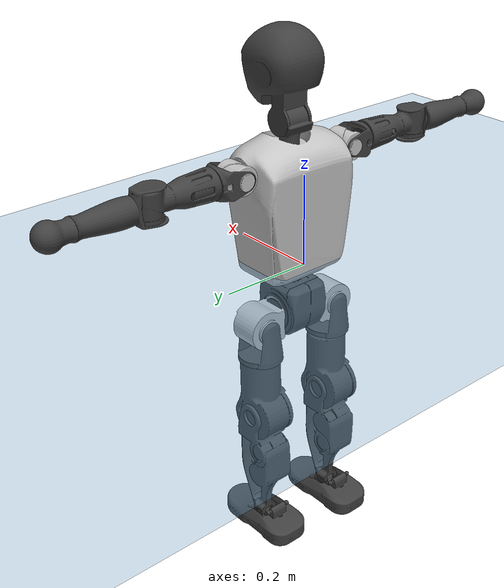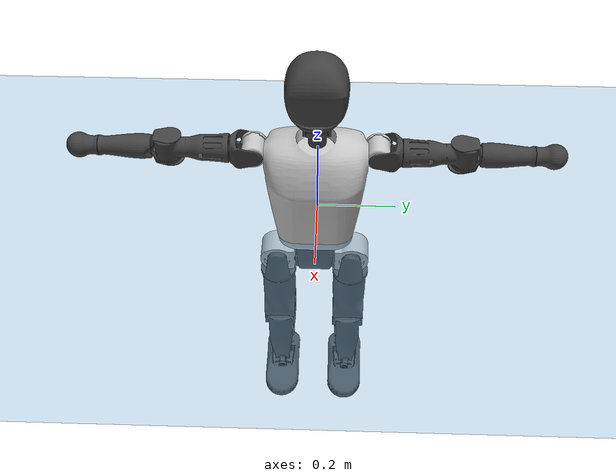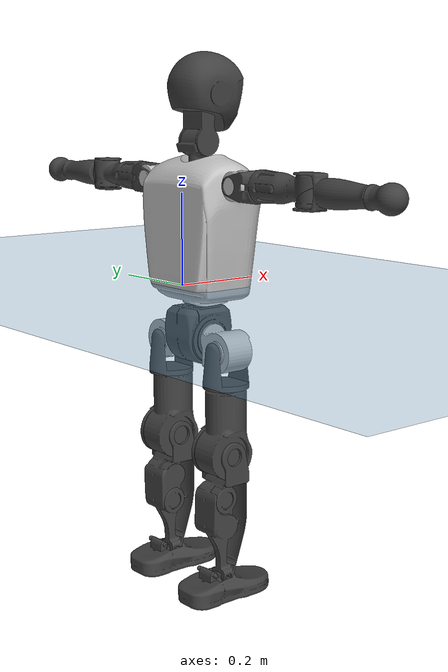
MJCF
<mujoco model="T1">
  <compiler angle="radian" assetdir="assets" balanceinertia="true" inertiafromgeom="false"/>

  <option timestep="0.005" density="1.2" viscosity="2e-05"/>

  <size nkey="1"/>

  <visual>
    <quality shadowsize="8192"/>
    <map shadowclip="0.5"/>
  </visual>

  <default>
    <default class="/">
      <joint armature="0.01" damping="0.01" frictionloss="0.1"/>
      <geom contype="0" conaffinity="0" group="1" solref="-1000 -80"/>
      <site size="0.01 0.005 0.005" group="5"/>
      <general forcelimited="true" biastype="affine" gainprm="25" biasprm="0 -25 -0.6"/>
      <default class="t1">
        <geom rgba="0.25 0.25 0.25 1"/>
        <default class="visual">
          <geom type="mesh" group="2"/>
        </default>
        <default class="collision">
          <geom group="3"/>
        </default>
        <default class="foot">
          <geom size="0.1115 0.05 0.015" type="box" condim="6" group="4" priority="1" solimp="0.015 1 0.015"/>
        </default>
        <default class="reward_collision_sphere">
          <geom group="5" rgba="1 0 0 1"/>
        </default>
      </default>
    </default>
  </default>

  <asset>
    <texture type="skybox" colorspace="auto" name="//unnamed_texture_0" builtin="gradient" rgb1="0.95 0.95 0.95" rgb2="0.95 0.95 0.95" width="100" height="600"/>
    <texture type="2d" colorspace="auto" name="texplane" builtin="checker" rgb1="0.345 0.575 0.748" rgb2="0.345 0.575 0.748" markrgb="1 1 1" width="512" height="512"/>
    <material name="MatPlane" class="/" texture="texplane" texuniform="true" texrepeat="2 2" specular="0.9"/>
    <mesh name="Trunk" class="/" file="Trunk.stl"/>
    <mesh name="H1" class="/" file="H1.stl"/>
    <mesh name="H2" class="/" file="H2.stl"/>
    <mesh name="AL1" class="/" file="AL1.stl"/>
    <mesh name="AL2" class="/" file="AL2.stl"/>
    <mesh name="AL3" class="/" file="AL3.stl"/>
    <mesh name="left_hand_link" class="/" file="left_hand_link.stl"/>
    <mesh name="AR1" class="/" file="AR1.stl"/>
    <mesh name="AR2" class="/" file="AR2.stl"/>
    <mesh name="AR3" class="/" file="AR3.stl"/>
    <mesh name="right_hand_link" class="/" file="right_hand_link.stl"/>
    <mesh name="Waist" class="/" file="Waist.stl"/>
    <mesh name="Hip_Pitch_Left" class="/" file="Hip_Pitch_Left.stl"/>
    <mesh name="Hip_Roll_Left" class="/" file="Hip_Roll_Left.stl"/>
    <mesh name="Hip_Yaw_Left" class="/" file="Hip_Yaw_Left.stl"/>
    <mesh name="Shank_Left" class="/" file="Shank_Left.stl"/>
    <mesh name="Ankle_Cross_Left" class="/" file="Ankle_Cross_Left.stl"/>
    <mesh name="left_foot_link" class="/" file="left_foot_link.stl"/>
    <mesh name="Hip_Pitch_Right" class="/" file="Hip_Pitch_Right.stl"/>
    <mesh name="Hip_Roll_Right" class="/" file="Hip_Roll_Right.stl"/>
    <mesh name="Hip_Yaw_Right" class="/" file="Hip_Yaw_Right.stl"/>
    <mesh name="Shank_Right" class="/" file="Shank_Right.stl"/>
    <mesh name="Ankle_Cross_Right" class="/" file="Ankle_Cross_Right.stl"/>
    <mesh name="right_foot_link" class="/" file="right_foot_link.stl"/>
  </asset>

  <worldbody>
    <geom name="floor" class="/" size="100 100 0.125" type="plane" group="0" material="MatPlane"/>
    <light name="toplight_shadow" class="/" pos="0 0 5" dir="0.0990148 0.0990148 -0.990148" type="directional" ambient="0.04 0.04 0.04" diffuse="0.55 0.55 0.55" specular="0.12 0.12 0.12"/>
    <light name="toplight_fill" class="/" pos="0 0 5" dir="0.0990148 0.0990148 -0.990148" type="directional" castshadow="false" ambient="0.04 0.04 0.04" diffuse="0.3 0.3 0.3" specular="0.08 0.08 0.08"/>
    <body name="trunk" childclass="t1" pos="4.28431e-05 -0.00261345 0.00219605" quat="0.999999 -0.00101601 0.000834239 0.000221441">
      <inertial pos="0.0369899 -0.00162405 0.105625" quat="0.999948 -4.23402e-05 -0.0102124 0.000432918" mass="7.87185" diaginertia="0.0145587 0.0554498 0.0607465"/>
      <joint name="//unnamed_joint_0" type="free" armature="0" damping="0" frictionloss="0"/>
      <geom name="//unnamed_geom_1" class="visual" rgba="0.76 0.76 0.76 1" mesh="Trunk"/>
      <geom name="//unnamed_geom_2" class="collision" size="0.0657192 0.0876257 0.131438" pos="0.0412853 0 0.12054" type="box"/>
      <geom name="//unnamed_geom_3" class="reward_collision_sphere" size="0.10077" pos="0.0412853 0 0.10045"/>
      <geom name="//unnamed_geom_4" class="reward_collision_sphere" size="0.0131438" pos="0.0412853 0.0795753 0"/>
      <geom name="//unnamed_geom_5" class="reward_collision_sphere" size="0.0131438" pos="0.0412853 -0.0795753 0"/>
      <geom name="//unnamed_geom_6" class="reward_collision_sphere" size="0.0131438" pos="0.0412853 0.100171 0.18081"/>
      <geom name="//unnamed_geom_7" class="reward_collision_sphere" size="0.0131438" pos="0.0412853 -0.100171 0.18081"/>
      <site name="imu" pos="0.0109843 0.00421835 -0.00462376" size="0.00876257"/>
      <camera name="track" pos="0 -1.87236 0" quat="0.707107 0.707107 0 0" mode="trackcom"/>
      <camera name="ego_camera" pos="0.0839468 0 0.42189" quat="-0.5 -0.5 0.5 0.5"/>
      <body name="H1" pos="0.0449073 0.00239004 0.241724" quat="1 2.36581e-05 6.71966e-06 -4.57265e-05">
        <inertial pos="-0.00359722 -0.00148713 0.0598925" quat="0.771128 -0.0107105 -0.00355654 0.63658" mass="0.298381" diaginertia="3.64198e-05 0.000162173 0.000151358"/>
        <joint name="AAHead_yaw" pos="0 0 0" axis="0.00416352 0.00285411 0.999987" range="-1.57552 1.5228" armature="0.00765604" damping="0.0169124" frictionloss="0.0987348"/>
        <geom name="//unnamed_geom_8" class="visual" mesh="H1"/>
        <body name="H2" pos="-0.000157443 -0.00018477 0.0636736" quat="1 7.68153e-06 -8.53929e-05 -0.000135836">
          <inertial pos="0.00398475 8.89046e-05 0.0990663" quat="0.988394 0.106491 -0.0750428 -0.0781439" mass="0.41277" diaginertia="0.000301155 0.0013398 0.00176349"/>
          <joint name="Head_pitch" pos="0 0 0" axis="0.00182909 -0.999992 -0.00359321" range="-1.22167 0.344926" armature="0.00750425" damping="0.00480616" frictionloss="0.0916058"/>
          <geom name="//unnamed_geom_9" class="visual" mesh="H2"/>
          <geom name="//unnamed_geom_10" class="collision" size="0.0701005" pos="0.00688089 0 0.110495"/>
          <geom name="//unnamed_geom_11" class="reward_collision_sphere" size="0.0788631" pos="0.0137618 0 0.10045"/>
        </body>
      </body>
      <body name="AL1" pos="0.0400322 0.0991781 0.220698" quat="1 0.000150184 0.000578838 4.84017e-05">
        <inertial pos="-0.00183987 0.0421468 -0.00075144" quat="0.513334 0.488843 -0.507383 0.489982" mass="0.35875" diaginertia="0.000210568 0.000932988 0.000306841"/>
        <joint name="Left_Shoulder_Pitch" pos="0 0 0" axis="0.000875151 0.999968 0.00798118" range="-3.31458 1.22385" armature="0.00848396" damping="0.00773943" frictionloss="0.0917806"/>
        <geom name="//unnamed_geom_12" class="visual" rgba="0.76 0.76 0.76 1" mesh="AL1"/>
        <body name="AL2" pos="0.000963074 0.045102 -0.000546986" quat="1 -1.50416e-05 4.84998e-05 4.18848e-05">
          <inertial pos="0.00310133 0.0340608 -0.000503015" quat="0.48901 0.511648 -0.48828 0.510557" mass="0.109451" diaginertia="6.2461e-05 0.000247486 0.000184404"/>
          <joint name="Left_Shoulder_Roll" pos="0 0 0" axis="-0.999993 0.00361941 0.000145161" stiffness="6.55048e-05" range="-1.57972 1.76912" armature="0.00889235" damping="0.00429033" frictionloss="0.0899557"/>
          <geom name="//unnamed_geom_13" class="visual" mesh="AL2"/>
          <body name="AL3" pos="0.00328331 0.0575729 0.00155282" quat="0.999999 9.42986e-05 0.00046888 -0.00113962">
            <inertial pos="-0.0029638 0.0800561 9.17419e-05" quat="0.709788 0.704414 -0.00101332 0.00044157" mass="0.702215" diaginertia="0.00199919 0.0088675 0.00063372"/>
            <joint name="Left_Elbow_Pitch" pos="0 0 0" axis="0.000224258 -1 -0.000351068" stiffness="0.00406403" range="-2.27583 2.26468" armature="0.00813485" damping="0.0083523" frictionloss="0.0921882"/>
            <geom name="//unnamed_geom_14" class="visual" mesh="AL3"/>
            <geom name="//unnamed_geom_15" class="collision" size="0.0262877 0.0657192" pos="0 0.046809 0" quat="0.707105 0.707108 0 0" type="cylinder"/>
            <geom name="//unnamed_geom_16" class="reward_collision_sphere" size="0.0315452"/>
            <body name="left_hand_link" pos="-0.000331656 0.137707 -0.00173895" quat="0.999999 0.0010999 6.9992e-05 -0.000723302">
              <inertial pos="-0.000690696 0.100948 0.00233563" quat="0.704641 0.709557 0.00190898 -0.00229028" mass="0.215148" diaginertia="0.0012534 0.00563531 0.00020535"/>
              <joint name="Left_Elbow_Yaw" pos="0 0 0" axis="0.000165105 -0.000190486 1" stiffness="0.00917887" range="-2.42547 0.0046427" armature="0.00893615" damping="0.0107653" frictionloss="0.0867052"/>
              <geom name="//unnamed_geom_17" class="visual" mesh="left_hand_link"/>
              <geom name="//unnamed_geom_18" class="collision" size="0.0262877 0.0766725" pos="0 0.121703 0" quat="0.707105 0.707108 0 0" type="cylinder"/>
              <geom name="//unnamed_geom_19" class="reward_collision_sphere" size="0.0438128"/>
              <geom name="//unnamed_geom_20" class="reward_collision_sphere" size="0.030669" pos="0 0.10298 0"/>
              <geom name="//unnamed_geom_21" class="reward_collision_sphere" size="0.030669" pos="0 0.201279 0"/>
            </body>
          </body>
        </body>
      </body>
      <body name="AR1" pos="0.0401723 -0.101197 0.21951" quat="1 0.000565354 0.000570926 -0.000142974">
        <inertial pos="-0.000168503 -0.04488 0.00257103" quat="0.501838 0.496565 -0.502627 0.498947" mass="0.351791" diaginertia="0.000207081 0.00088564 0.00029564"/>
        <joint name="Right_Shoulder_Pitch" pos="0 0 0" axis="0.000229011 -0.999927 0.0121203" stiffness="0.00632484" range="-1.17859 3.30515" armature="0.00859432" damping="0.00704415" frictionloss="0.0978894"/>
        <geom name="//unnamed_geom_22" class="visual" rgba="0.76 0.76 0.76 1" mesh="AR1"/>
        <body name="AR2" pos="-0.000582464 -0.0440607 7.14205e-06" quat="1 0.000462334 -8.0161e-05 -0.00017362">
          <inertial pos="0.00115691 -0.0351145 -0.000797798" quat="0.51446 0.488633 -0.508225 0.488136" mass="0.109569" diaginertia="6.36604e-05 0.000254843 0.000180415"/>
          <joint name="Right_Shoulder_Roll" pos="0 0 0" axis="-0.99991 0.00401079 0.0127903" range="-1.73272 1.56214" armature="0.00762575" damping="0.00750143" frictionloss="0.0912005"/>
          <geom name="//unnamed_geom_23" class="visual" mesh="AR2"/>
          <body name="AR3" pos="7.95115e-05 -0.0593679 0.0022418" quat="0.999999 -0.000296071 -8.19935e-05 -0.00115541">
            <inertial pos="0.00226823 -0.0798366 0.00270398" quat="0.707891 0.706322 0.000375396 9.90038e-05" mass="0.668578" diaginertia="0.00187064 0.00899965 0.00062123"/>
            <joint name="Right_Elbow_Pitch" pos="0 0 0" axis="-0.000651218 1 -0.000126089" range="-2.25027 2.26063" armature="0.00861818" damping="0.00612845" frictionloss="0.0987541"/>
            <geom name="//unnamed_geom_24" class="visual" mesh="AR3"/>
            <geom name="//unnamed_geom_25" class="collision" size="0.0262877 0.0657192" pos="0 -0.046809 0" quat="0.707105 0.707108 0 0" type="cylinder"/>
            <geom name="//unnamed_geom_26" class="reward_collision_sphere" size="0.0315452"/>
            <body name="right_hand_link" pos="-0.00226917 -0.138873 -0.00203416" quat="1 -5.12592e-05 -0.000100611 0.000144605">
              <inertial pos="-0.000469716 -0.103145 0.00176635" quat="0.706169 0.708039 -0.00157113 0.00210343" mass="0.22071" diaginertia="0.00130163 0.00605524 0.000225967"/>
              <joint name="Right_Elbow_Yaw" pos="0 0 0" axis="-0.0110207 -0.00163884 0.999938" range="0.0145295 2.43654" armature="0.00859223" damping="0.00522293" frictionloss="0.0928204"/>
              <geom name="//unnamed_geom_27" class="visual" mesh="right_hand_link"/>
              <geom name="//unnamed_geom_28" class="collision" size="0.0262877 0.0766725" pos="0 -0.121703 0" quat="0.707105 0.707108 0 0" type="cylinder"/>
              <geom name="//unnamed_geom_29" class="reward_collision_sphere" size="0.0438128"/>
              <geom name="//unnamed_geom_30" class="reward_collision_sphere" size="0.030669" pos="0 -0.10298 0"/>
              <geom name="//unnamed_geom_31" class="reward_collision_sphere" size="0.030669" pos="0 -0.201279 0"/>
            </body>
          </body>
        </body>
      </body>
      <body name="Waist" pos="0.0413156 -0.00142287 -0.11638" quat="0.999999 -0.00109791 -0.00133452 -4.35286e-05">
        <inertial pos="-0.00144515 0.00153723 0.00557901" quat="0.984615 0.00672931 -0.17444 -0.00768311" mass="1.69475" diaginertia="0.000837888 0.00388228 0.00496023"/>
        <joint name="Waist" pos="0 0 0" axis="0.00672781 -0.00373406 0.99997" range="-1.57092 1.54819" armature="0.00863799" damping="0.0166923" frictionloss="0.0874806"/>
        <geom name="//unnamed_geom_32" class="visual" mesh="Waist"/>
        <body name="Hip_Pitch_Left" pos="0.001265 0.0964679 0.00158391" quat="1 -8.10962e-05 -0.000172777 9.78889e-05">
          <inertial pos="0.00334853 -0.0068267 -0.018459" quat="0.974644 0.222009 0.0278978 0.00154991" mass="0.697025" diaginertia="0.00027364 0.00109828 0.00131617"/>
          <joint name="Left_Hip_Pitch" pos="0 0 0" axis="-0.00199705 0.999972 0.00726574" stiffness="0.012799" range="-1.79812 1.59448" armature="0.00928142" damping="0.0115436" frictionloss="0.0893725"/>
          <geom name="//unnamed_geom_33" class="visual" rgba="0.76 0.76 0.76 1" mesh="Hip_Pitch_Left"/>
          <body name="Hip_Roll_Left" pos="-0.00166606 -0.00110374 -0.0226626" quat="1 -0.000105683 -2.44658e-05 0.000318202">
            <inertial pos="0.00081445 -0.00259328 -0.054503" quat="0.706584 -0.00567795 -0.00624091 0.707579" mass="0.253171" diaginertia="0.000253191 0.00102746 0.000529487"/>
            <joint name="Left_Hip_Roll" pos="0 0 0" axis="-0.999999 2.50101e-05 -0.00170358" stiffness="0.00058184" range="-1.54671 0.220998" armature="0.00827583" damping="0.000617596" frictionloss="0.0977245"/>
            <geom name="//unnamed_geom_34" class="visual" mesh="Hip_Roll_Left"/>
            <geom name="//unnamed_geom_35" class="reward_collision_sphere" size="0.0481941"/>
            <body name="Hip_Yaw_Left" pos="0.00113832 -0.00170726 -0.0811527" quat="1 0.000487538 0.000323775 -0.000426487">
              <inertial pos="-0.00548985 -0.00123783 -0.0919139" quat="0.697442 -0.0326793 -0.033674 0.715104" mass="1.43609" diaginertia="0.00385636 0.017552 0.00255457"/>
              <joint name="Left_Hip_Yaw" pos="0 0 0" axis="-0.00390486 -0.000209711 -0.999992" range="-1.05699 1.02218" armature="0.00888977" damping="0.0062694" frictionloss="0.0866213"/>
              <geom name="//unnamed_geom_36" class="visual" mesh="Hip_Yaw_Left"/>
              <geom name="//unnamed_geom_37" class="collision" size="0.0438128 0.0701005" type="cylinder"/>
              <body name="Shank_Left" pos="-0.0092522 7.45705e-05 -0.136008" quat="1 8.49389e-06 8.06012e-05 0.000278676">
                <inertial pos="-0.00639505 0.000906561 -0.124939" quat="0.997666 -0.0036851 -0.0199404 0.0652035" mass="1.14227" diaginertia="0.00540336 0.0236903 0.00181887"/>
                <joint name="Left_Knee_Pitch" pos="0 0 0" axis="-0.00126999 0.999998 0.00145721" range="0.00062722 2.30691" armature="0.00972814" damping="0" frictionloss="0.0861893"/>
                <geom name="//unnamed_geom_38" class="visual" mesh="Shank_Left"/>
                <geom name="//unnamed_geom_39" class="collision" size="0.0438128 0.0657192" pos="0 0 -0.12054" type="cylinder"/>
                <geom name="//unnamed_geom_40" class="reward_collision_sphere" size="0.0569567"/>
                <body name="Ankle_Cross_Left" pos="0.00277772 -0.00012039 -0.280583" quat="1 -5.60647e-05 0.000364357 -0.000291089">
                  <inertial pos="-0.00504261 -0.00126451 -0.00699331" quat="0.441805 0.549789 0.551941 0.444861" mass="0.0486409" diaginertia="4.39569e-06 1.84582e-05 1.15848e-05"/>
                  <joint name="Left_Ankle_Pitch" pos="0 0 0" axis="-0.00021794 1 0.000440115" range="-0.866548 0.345082" armature="0.00985333" damping="0.022327" frictionloss="0.0892786"/>
                  <geom name="//unnamed_geom_41" class="visual" mesh="Ankle_Cross_Left"/>
                  <body name="left_foot_link" pos="-0.000496029 -0.00252293 -0.0103045" quat="0.999999 -0.000108748 0.00089585 -0.000865051">
                    <inertial pos="-0.00244804 -0.000949023 -0.00820379" quat="-0.00892946 0.628084 0.00366204 0.778085" mass="0.479527" diaginertia="0.00042555 0.00171336 0.00229049"/>
                    <joint name="Left_Ankle_Roll" pos="0 0 0" axis="-0.999906 -0.0073269 -0.0115685" range="-0.453097 0.475564" armature="0.00865558" damping="0" frictionloss="0.0921597"/>
                    <geom name="//unnamed_geom_42" class="visual" mesh="left_foot_link"/>
                    <geom name="left_foot" class="foot" size="0.108572 0.0391769 0.014149" pos="0.00688089 0 -0.0150675"/>
                    <geom name="//unnamed_geom_44" class="reward_collision_sphere" size="0.0455653" pos="0.00688089 0 -0.0150675"/>
                    <geom name="//unnamed_geom_45" class="reward_collision_sphere" size="0.0262877" pos="0.0653684 -0.0215321 -0.0150675"/>
                    <geom name="//unnamed_geom_46" class="reward_collision_sphere" size="0.0262877" pos="-0.0481662 -0.0215321 -0.0150675"/>
                    <site name="left_foot" class="foot" pos="0.00688089 0 -0.0150675" size="0.00876257"/>
                  </body>
                </body>
              </body>
            </body>
          </body>
        </body>
        <body name="Hip_Pitch_Right" pos="9.69877e-05 -0.1003 -0.000536315" quat="1 -0.000316333 -0.000171931 7.2438e-05">
          <inertial pos="-0.00245838 0.00440041 -0.0175563" quat="0.973477 -0.22796 0.0189247 -0.00424645" mass="0.684878" diaginertia="0.000285643 0.00107859 0.00126934"/>
          <joint name="Right_Hip_Pitch" pos="0 0 0" axis="0.00122502 -0.999988 -0.00464518" range="-1.55052 1.76339" armature="0.00883752" damping="0" frictionloss="0.0877911"/>
          <geom name="//unnamed_geom_47" class="visual" rgba="0.76 0.76 0.76 1" mesh="Hip_Pitch_Right"/>
          <body name="Hip_Roll_Right" pos="-0.0026801 -0.000134188 -0.0208391" quat="1 0.000208127 -0.000721411 -0.000436239">
            <inertial pos="-0.000852923 -0.000785133 -0.0517906" quat="0.708075 -0.0186748 -0.00373354 0.705881" mass="0.262177" diaginertia="0.000280866 0.00111302 0.0005286"/>
            <joint name="Right_Hip_Roll" pos="0 0 0" axis="-0.999986 0.00337981 -0.00417591" stiffness="6.08546e-05" range="-0.181226 1.57814" armature="0.00841216" damping="0.00467159" frictionloss="0.0961244"/>
            <geom name="//unnamed_geom_48" class="visual" mesh="Hip_Roll_Right"/>
            <geom name="//unnamed_geom_49" class="reward_collision_sphere" size="0.0481941"/>
            <body name="Hip_Yaw_Right" pos="-0.00162114 0.000824169 -0.0852783" quat="1 -7.91951e-05 -0.000437403 0.000207662">
              <inertial pos="-0.0041954 0.000173982 -0.0882675" quat="0.716128 -0.0300487 -0.0338468 0.6965" mass="1.45922" diaginertia="0.00412191 0.0184987 0.00274967"/>
              <joint name="Right_Hip_Yaw" pos="0 0 0" axis="0.0019402 0.00114057 -0.999997" range="-1.01132 0.999957" armature="0.00835399" damping="0.0217394" frictionloss="0.0894848"/>
              <geom name="//unnamed_geom_50" class="visual" mesh="Hip_Yaw_Right"/>
              <geom name="//unnamed_geom_51" class="collision" size="0.0438128 0.0701005" type="cylinder"/>
              <body name="Shank_Right" pos="-0.0115595 -5.89038e-05 -0.137036" quat="1 5.10725e-05 -6.27624e-05 0.000107232">
                <inertial pos="-0.00362018 -0.00275519 -0.122774" quat="0.999404 0.00092057 -0.0278001 -0.020435" mass="1.236" diaginertia="0.00540706 0.0250027 0.00193121"/>
                <joint name="Right_Knee_Pitch" pos="0 0 0" axis="0.00877636 -0.999957 0.00315051" stiffness="0.000201068" range="-2.39449 0.00723661" armature="0.00920354" damping="0.0106672" frictionloss="0.0912346"/>
                <geom name="//unnamed_geom_52" class="visual" mesh="Shank_Right"/>
                <geom name="//unnamed_geom_53" class="collision" size="0.0438128 0.0657192" pos="0 0 -0.12054" type="cylinder"/>
                <geom name="//unnamed_geom_54" class="reward_collision_sphere" size="0.0569567"/>
                <body name="Ankle_Cross_Right" pos="-0.00100081 -0.00153469 -0.283754" quat="1 -8.50845e-05 5.73791e-05 8.6935e-05">
                  <inertial pos="-0.00325014 0.00140261 -0.00792808" quat="0.44269 0.551242 0.550756 0.443651" mass="0.0484778" diaginertia="4.6515e-06 1.81725e-05 1.20607e-05"/>
                  <joint name="Right_Ankle_Pitch" pos="0 0 0" axis="0.0123779 -0.999923 -0.000280416" range="-0.31852 0.824008" armature="0.00868686" damping="0.0129816" frictionloss="0.0864066"/>
                  <geom name="//unnamed_geom_55" class="visual" mesh="Ankle_Cross_Right"/>
                  <body name="right_foot_link" pos="0.000859653 0.00148246 -0.0121899" quat="1 -5.31168e-06 1.32868e-05 2.73016e-05">
                    <inertial pos="-5.05665e-05 0.00244471 -0.0117712" quat="0.00675817 0.624601 -0.00991017 0.780852" mass="0.443776" diaginertia="0.000400402 0.00165511 0.00209391"/>
                    <joint name="Right_Ankle_Roll" pos="0 0 0" axis="-0.999996 0.00195934 -0.0021718" range="-0.487798 0.493776" armature="0.00767204" damping="0" frictionloss="0.0966289"/>
                    <geom name="//unnamed_geom_56" class="visual" mesh="right_foot_link"/>
                    <geom name="right_foot" class="foot" size="0.0980715 0.0396084 0.0142711" pos="0.00688089 0 -0.0150675"/>
                    <geom name="//unnamed_geom_58" class="reward_collision_sphere" size="0.0350503"/>
                    <geom name="//unnamed_geom_59" class="reward_collision_sphere" size="0.0262877" pos="0.00688089 0 -0.0150675"/>
                    <geom name="//unnamed_geom_60" class="reward_collision_sphere" size="0.0262877" pos="0.0653684 0.0215321 -0.0150675"/>
                    <geom name="//unnamed_geom_61" class="reward_collision_sphere" size="0.0262877" pos="-0.0481662 0.0215321 -0.0150675"/>
                    <site name="right_foot" class="foot" pos="0.00688089 0 -0.0150675" size="0.00876257"/>
                  </body>
                </body>
              </body>
            </body>
          </body>
        </body>
      </body>
    </body>
  </worldbody>

  <contact>
    <pair class="/" geom1="floor" geom2="left_foot" name="//unnamed_contact_0"/>
    <pair class="/" geom1="floor" geom2="right_foot" name="//unnamed_contact_1"/>
  </contact>

  <actuator>
    <general name="AAHead_yaw" class="/" joint="AAHead_yaw" forcerange="-6.1874 6.1874" gainprm="21.6471" biasprm="0 -21.6471 -0.529131"/>
    <general name="Head_pitch" class="/" joint="Head_pitch" forcerange="-6.25875 6.25875" gainprm="21.6471" biasprm="0 -21.6471 -0.529131"/>
    <general name="Left_Shoulder_Pitch" class="/" joint="Left_Shoulder_Pitch" forcerange="-14.207 14.207" gainprm="21.6471" biasprm="0 -21.6471 -0.529131"/>
    <general name="Left_Shoulder_Roll" class="/" joint="Left_Shoulder_Roll" forcerange="-14.1295 14.1295" gainprm="21.6471" biasprm="0 -21.6471 -0.529131"/>
    <general name="Left_Elbow_Pitch" class="/" joint="Left_Elbow_Pitch" forcerange="-16.913 16.913" gainprm="21.6471" biasprm="0 -21.6471 -0.529131"/>
    <general name="Left_Elbow_Yaw" class="/" joint="Left_Elbow_Yaw" forcerange="-15.7919 15.7919" gainprm="21.6471" biasprm="0 -21.6471 -0.529131"/>
    <general name="Right_Shoulder_Pitch" class="/" joint="Right_Shoulder_Pitch" forcerange="-16.4076 16.4076" gainprm="21.6471" biasprm="0 -21.6471 -0.529131"/>
    <general name="Right_Shoulder_Roll" class="/" joint="Right_Shoulder_Roll" forcerange="-17.0062 17.0062" gainprm="21.6471" biasprm="0 -21.6471 -0.529131"/>
    <general name="Right_Elbow_Pitch" class="/" joint="Right_Elbow_Pitch" forcerange="-15.1675 15.1675" gainprm="21.6471" biasprm="0 -21.6471 -0.529131"/>
    <general name="Right_Elbow_Yaw" class="/" joint="Right_Elbow_Yaw" forcerange="-16.2323 16.2323" gainprm="21.6471" biasprm="0 -21.6471 -0.529131"/>
    <general name="Waist" class="/" joint="Waist" forcerange="-23.9665 23.9665" gainprm="21.6471" biasprm="0 -21.6471 -0.529131"/>
    <general name="Left_Hip_Pitch" class="/" joint="Left_Hip_Pitch" forcerange="-38.3728 38.3728" gainprm="21.6471" biasprm="0 -21.6471 -0.529131"/>
    <general name="Left_Hip_Roll" class="/" joint="Left_Hip_Roll" forcerange="-26.1327 26.1327" gainprm="21.6471" biasprm="0 -21.6471 -0.529131"/>
    <general name="Left_Hip_Yaw" class="/" joint="Left_Hip_Yaw" forcerange="-25.0728 25.0728" gainprm="21.6471" biasprm="0 -21.6471 -0.529131"/>
    <general name="Left_Knee_Pitch" class="/" joint="Left_Knee_Pitch" forcerange="-51.4391 51.4391" gainprm="21.6471" biasprm="0 -21.6471 -0.529131"/>
    <general name="Left_Ankle_Pitch" class="/" joint="Left_Ankle_Pitch" forcerange="-17.5633 17.5633" gainprm="21.6471" biasprm="0 -21.6471 -0.529131"/>
    <general name="Left_Ankle_Roll" class="/" joint="Left_Ankle_Roll" forcerange="-12.8822 12.8822" gainprm="21.6471" biasprm="0 -21.6471 -0.529131"/>
    <general name="Right_Hip_Pitch" class="/" joint="Right_Hip_Pitch" forcerange="-43.3984 43.3984" gainprm="21.6471" biasprm="0 -21.6471 -0.529131"/>
    <general name="Right_Hip_Roll" class="/" joint="Right_Hip_Roll" forcerange="-28.8187 28.8187" gainprm="21.6471" biasprm="0 -21.6471 -0.529131"/>
    <general name="Right_Hip_Yaw" class="/" joint="Right_Hip_Yaw" forcerange="-26.3899 26.3899" gainprm="21.6471" biasprm="0 -21.6471 -0.529131"/>
    <general name="Right_Knee_Pitch" class="/" joint="Right_Knee_Pitch" forcerange="-54.3216 54.3216" gainprm="21.6471" biasprm="0 -21.6471 -0.529131"/>
    <general name="Right_Ankle_Pitch" class="/" joint="Right_Ankle_Pitch" forcerange="-15.8015 15.8015" gainprm="21.6471" biasprm="0 -21.6471 -0.529131"/>
    <general name="Right_Ankle_Roll" class="/" joint="Right_Ankle_Roll" forcerange="-14.347 14.347" gainprm="21.6471" biasprm="0 -21.6471 -0.529131"/>
  </actuator>

  <sensor>
    <gyro site="imu" name="imu_angular_velocity"/>
    <velocimeter site="imu" name="imu_linear_velocity"/>
    <framelinvel objtype="site" objname="left_foot" name="left_foot_global_linear_velocity"/>
    <framelinvel objtype="site" objname="right_foot" name="right_foot_global_linear_velocity"/>
  </sensor>

  <keyframe>
    <key name="home" qpos="0 0 0.6385 1 0 0 0 0 0 0 1.4 0 -0.4 0 -1.4 0 0.4 0 -0.4 0 0 0.8 -0.4 0 0.4 0 0 -0.8 0.4 0"/>
  </keyframe>
</mujoco>
